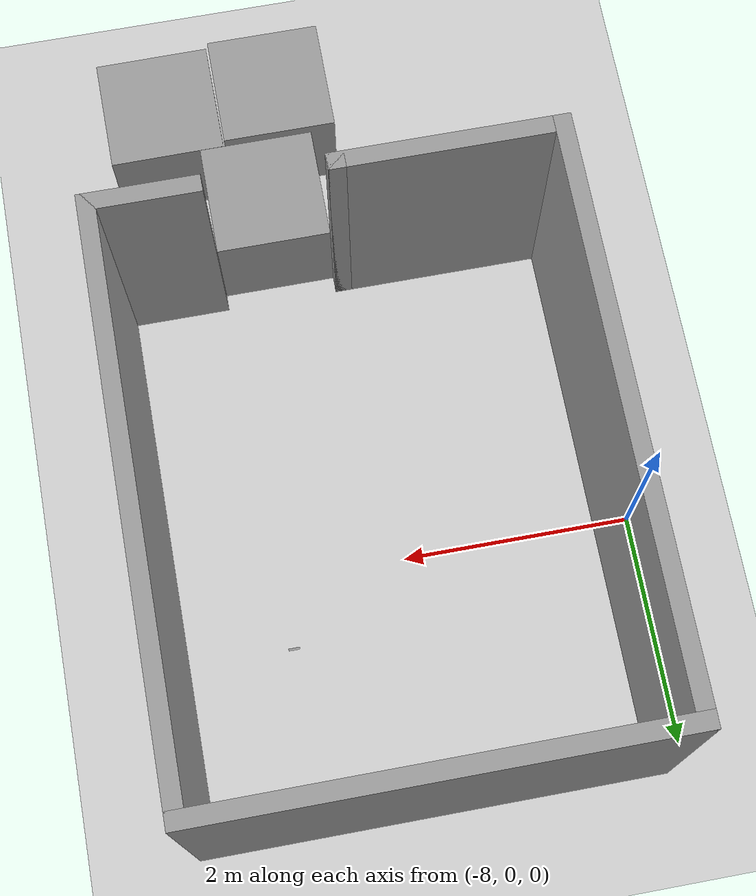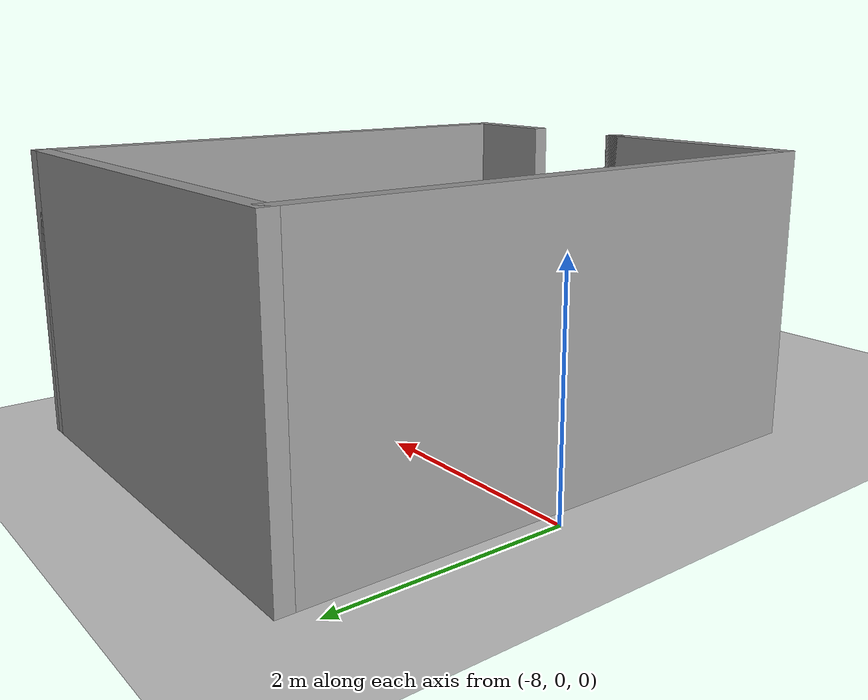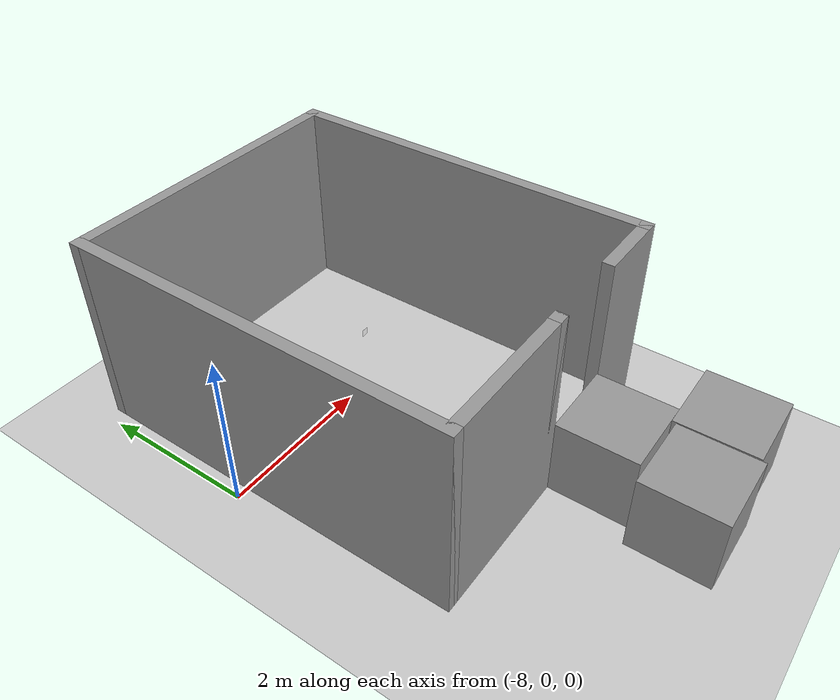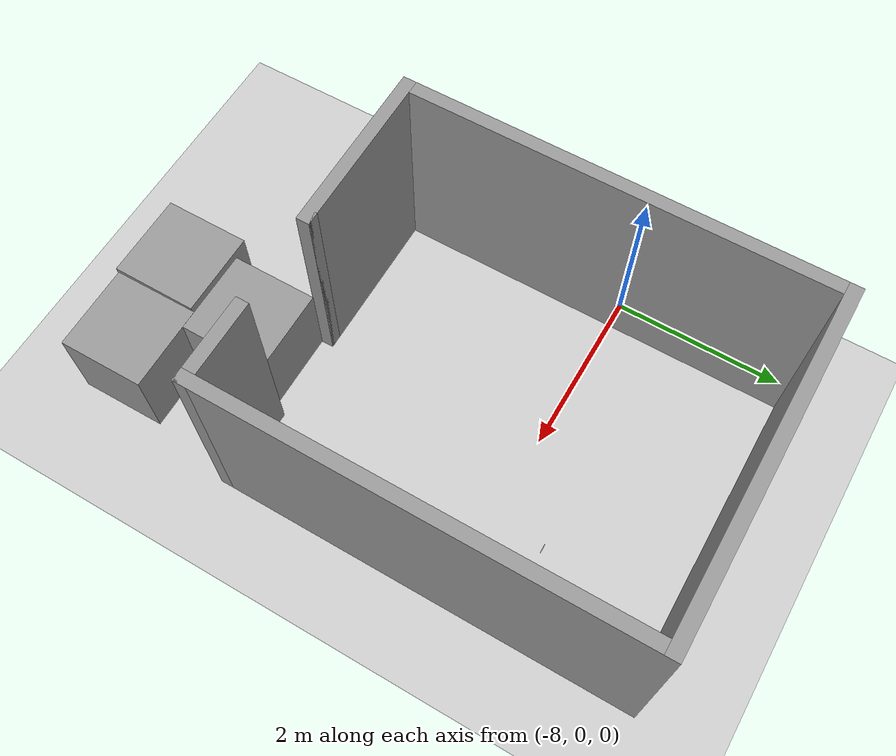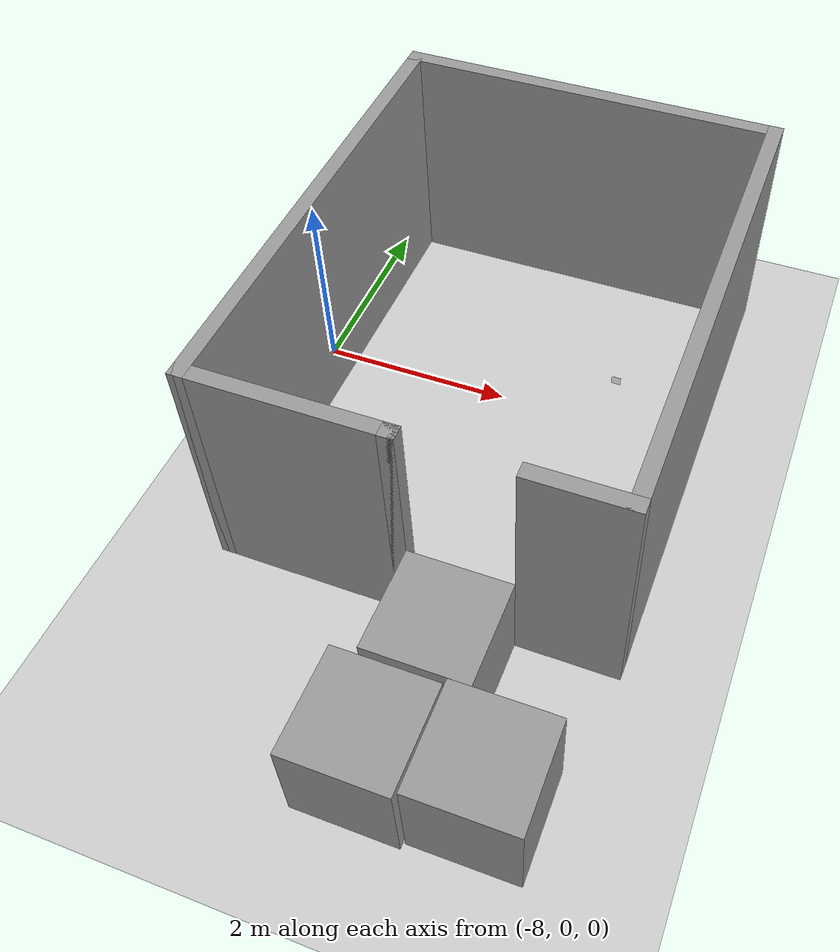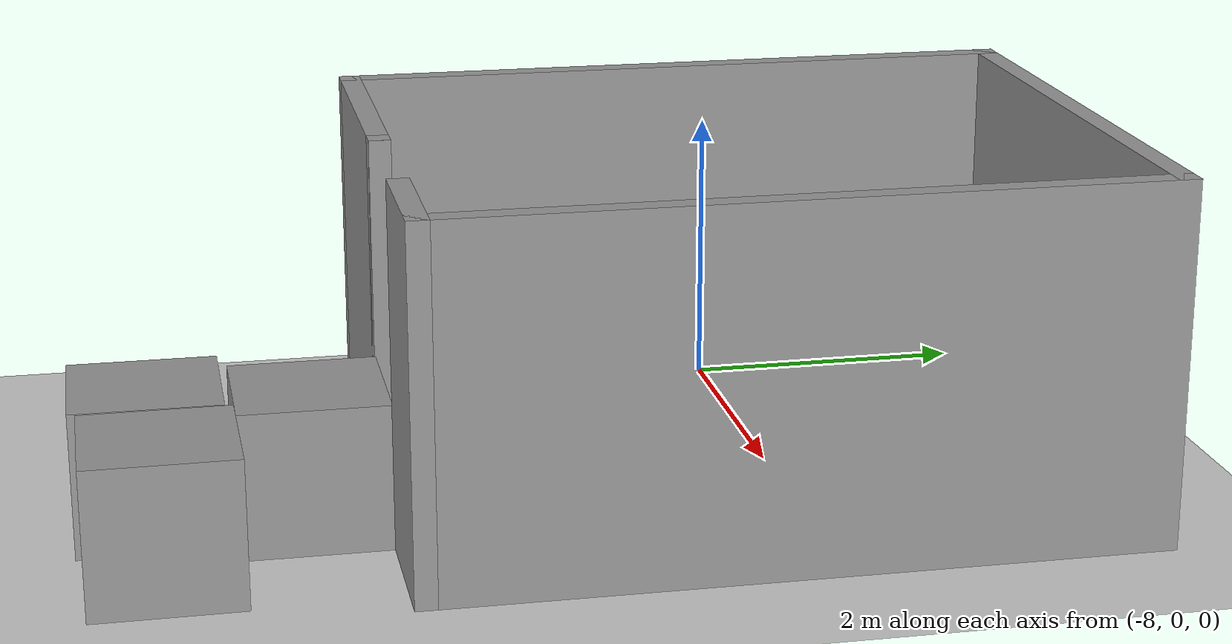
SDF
<sdf version="1.7">
 <world name="default">
  <light name="sun" type="directional">
   <pose>0 0 10 0 -0 0</pose>
   <diffuse>0.8 0.8 0.8 1</diffuse>
   <specular>0.2 0.2 0.2 1</specular>
   <attenuation>
    <range>1000</range>
    <constant>0.9</constant>
    <linear>0.01</linear>
    <quadratic>0.001</quadratic>
   </attenuation>
   <direction>-0.5 0.1 -0.9</direction>
   <spot><inner_angle>0</inner_angle><outer_angle>0</outer_angle><falloff>0</falloff></spot>
  </light>
  <model name="ground_plane">
   <static>1</static>
   <link name="link">
    <collision name="collision">
     <geometry><plane><normal>0 0 1</normal><size>100 100</size></plane></geometry>
     <surface>
      <contact><collide_bitmask>65535</collide_bitmask></contact>
      <friction><ode><mu>100</mu><mu2>50</mu2></ode></friction>
     </surface>
    </collision>
    <visual name="visual">
     <cast_shadows>0</cast_shadows>
     <geometry><plane><normal>0 0 1</normal><size>100 100</size></plane></geometry>
     <material>
      <script><uri>file://media/materials/scripts/gazebo.material</uri><name>Gazebo/Grey</name></script>
     </material>
    </visual>
   </link>
  </model>
  <gravity>0 0 -9.8</gravity>
  <magnetic_field>6e-06 2.3e-05 -4.2e-05</magnetic_field>
  <atmosphere type="adiabatic"/>
  <physics type="ode">
   <max_step_size>0.001</max_step_size>
   <real_time_factor>1</real_time_factor>
   <real_time_update_rate>1000</real_time_update_rate>
  </physics>
  <scene><ambient>0.4 0.4 0.4 1</ambient><background>0.7 0.7 0.7 1</background><shadows>1</shadows></scene>
  <spherical_coordinates>
   <surface_model>EARTH_WGS84</surface_model>
   <latitude_deg>0</latitude_deg>
   <longitude_deg>0</longitude_deg>
   <elevation>0</elevation>
   <heading_deg>0</heading_deg>
  </spherical_coordinates>
  <model name="G1049">
   <pose>-4.91548 0.61801 0 0 -0 0</pose>
   <link name="Wall_0">
    <collision name="Wall_0_Collision">
     <geometry><box><size>4 0.15 2.5</size></box></geometry>
     <pose>0 0 1.25 0 -0 0</pose>
    </collision>
    <visual name="Wall_0_Visual">
     <pose>0 0 1.25 0 -0 0</pose>
     <geometry><box><size>4 0.15 2.5</size></box></geometry>
     <material>
      <script><uri>file://media/materials/scripts/gazebo.material</uri><name>Gazebo/Grey</name></script>
      <ambient>1 1 1 1</ambient>
     </material>
     <meta><layer>0</layer></meta>
    </visual>
    <pose>-0.9325 1.5375 0 0 -0 0</pose>
   </link>
   <link name="marker">
    <collision name="marker_Collision">
     <geometry><box><size>0.2 0.005 0.2</size></box></geometry>
     <pose>0 0 0.05 0 -0 0</pose>
    </collision>
    <visual name="marker_Visual">
     <pose>0 0 0.05 0 -0 0</pose>
     <geometry><box><size>0.1 0.001 0.1</size></box></geometry>
     <material>
      <script>
       <uri>file://home/wxm/src/wpr_simulation/scripts/aruco.material</uri>
       <name>Gazebo/aruco-36</name>
      </script>
      <ambient>1 1 1 1</ambient>
     </material>
     <meta><layer>0</layer></meta>
    </visual>
   </link>
   <link name="Wall_1">
    <collision name="Wall_1_Collision">
     <geometry><box><size>5 0.15 2.5</size></box></geometry>
     <pose>0 0 1.25 0 -0 0</pose>
    </collision>
    <visual name="Wall_1_Visual">
     <pose>0 0 1.25 0 -0 0</pose>
     <geometry><box><size>5 0.15 2.5</size></box></geometry>
     <material>
      <script><uri>file://media/materials/scripts/gazebo.material</uri><name>Gazebo/Grey</name></script>
      <ambient>1 1 1 1</ambient>
     </material>
     <meta><layer>0</layer></meta>
    </visual>
    <pose>0.9925 -0.8875 0 0 -0 -1.5708</pose>
   </link>
   <link name="Wall_2">
    <collision name="Wall_2_Collision">
     <geometry><box><size>1 0.15 2.5</size></box></geometry>
     <pose>0 0 1.25 0 -0 0</pose>
    </collision>
    <visual name="Wall_2_Visual">
     <pose>0 0 1.25 0 -0 0</pose>
     <geometry><box><size>1 0.15 2.5</size></box></geometry>
     <material>
      <script><uri>file://media/materials/scripts/gazebo.material</uri><name>Gazebo/Grey</name></script>
      <ambient>1 1 1 1</ambient>
     </material>
     <meta><layer>0</layer></meta>
    </visual>
    <pose>0.5675 -3.3125 0 0 -0 3.14159</pose>
   </link>
   <link name="Wall_4">
    <collision name="Wall_4_Collision">
     <geometry><box><size>5 0.15 2.5</size></box></geometry>
     <pose>0 0 1.25 0 -0 0</pose>
    </collision>
    <visual name="Wall_4_Visual">
     <pose>0 0 1.25 0 -0 0</pose>
     <geometry><box><size>5 0.15 2.5</size></box></geometry>
     <material>
      <script><uri>file://media/materials/scripts/gazebo.material</uri><name>Gazebo/Grey</name></script>
      <ambient>1 1 1 1</ambient>
     </material>
     <meta><layer>0</layer></meta>
    </visual>
    <pose>-2.8575 -0.8875 0 0 -0 -1.5708</pose>
   </link>
   <link name="Wall_5">
    <collision name="Wall_5_Collision">
     <geometry><box><size>2 0.15 2.5</size></box></geometry>
     <pose>0 0 1.25 0 -0 0</pose>
    </collision>
    <visual name="Wall_5_Visual">
     <pose>0 0 1.25 0 -0 0</pose>
     <geometry><box><size>2 0.15 2.5</size></box></geometry>
     <material>
      <script><uri>file://media/materials/scripts/gazebo.material</uri><name>Gazebo/Grey</name></script>
      <ambient>1 1 1 1</ambient>
     </material>
     <meta><layer>0</layer></meta>
    </visual>
    <pose>-1.9325 -3.3125 0 0 -0 0</pose>
   </link>
   <link name="Wall_6">
    <collision name="Wall_6_Collision">
     <geometry><box><size>0.15 0.15 2.5</size></box></geometry>
     <pose>0 0 1.25 0 -0 0</pose>
    </collision>
    <visual name="Wall_6_Visual">
     <pose>0 0 1.25 0 -0 0</pose>
     <geometry><box><size>0.15 0.15 2.5</size></box></geometry>
     <material>
      <script><uri>file://media/materials/scripts/gazebo.material</uri><name>Gazebo/Grey</name></script>
      <ambient>1 1 1 1</ambient>
     </material>
     <meta><layer>0</layer></meta>
    </visual>
    <pose>-1.0075 -3.3125 0 0 -0 0</pose>
   </link>
   <static>1</static>
  </model>
  <model name="unit_box">
   <pose>-5.57217 -4.31708 0.499995 0 1e-05 0</pose>
   <link name="link">
    <inertial>
     <mass>1</mass>
     <inertia>
      <ixx>0.166667</ixx>
      <ixy>0</ixy>
      <ixz>0</ixz>
      <iyy>0.166667</iyy>
      <iyz>0</iyz>
      <izz>0.166667</izz>
     </inertia>
    </inertial>
    <collision name="collision"><geometry><box><size>1 1 1</size></box></geometry></collision>
    <visual name="visual">
     <geometry><box><size>1 1 1</size></box></geometry>
     <material>
      <script><name>Gazebo/Grey</name><uri>file://media/materials/scripts/gazebo.material</uri></script>
     </material>
    </visual>
   </link>
  </model>
  <model name="unit_box_0">
   <pose>-4.55473 -4.26035 0.499995 -0 1e-05 0.007127</pose>
   <link name="link">
    <inertial>
     <mass>1</mass>
     <inertia>
      <ixx>0.166667</ixx>
      <ixy>0</ixy>
      <ixz>0</ixz>
      <iyy>0.166667</iyy>
      <iyz>0</iyz>
      <izz>0.166667</izz>
     </inertia>
    </inertial>
    <collision name="collision"><geometry><box><size>1 1 1</size></box></geometry></collision>
    <visual name="visual">
     <geometry><box><size>1 1 1</size></box></geometry>
     <material>
      <script><name>Gazebo/Grey</name><uri>file://media/materials/scripts/gazebo.material</uri></script>
     </material>
    </visual>
   </link>
  </model>
  <model name="unit_box_1">
   <pose>-5.34773 -3.26248 0.500193 -0.000393 -7e-06 0.000523</pose>
   <link name="link">
    <inertial>
     <mass>1</mass>
     <inertia>
      <ixx>0.166667</ixx>
      <ixy>0</ixy>
      <ixz>0</ixz>
      <iyy>0.166667</iyy>
      <iyz>0</iyz>
      <izz>0.166667</izz>
     </inertia>
    </inertial>
    <collision name="collision"><geometry><box><size>1 1 1</size></box></geometry></collision>
    <visual name="visual">
     <geometry><box><size>1 1 1</size></box></geometry>
     <material>
      <script><name>Gazebo/Grey</name><uri>file://media/materials/scripts/gazebo.material</uri></script>
     </material>
    </visual>
   </link>
  </model>
 </world>
</sdf>
